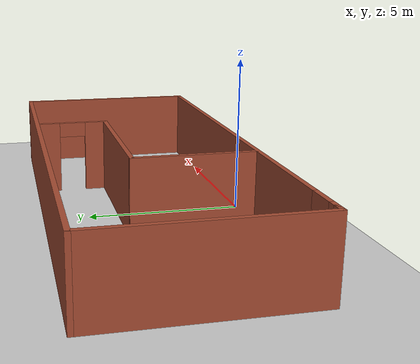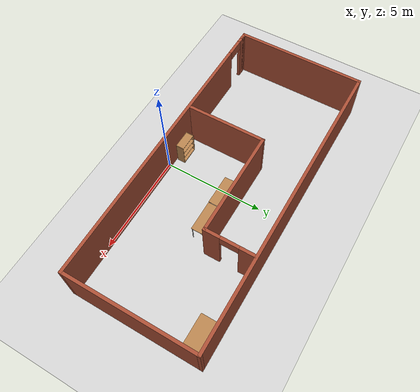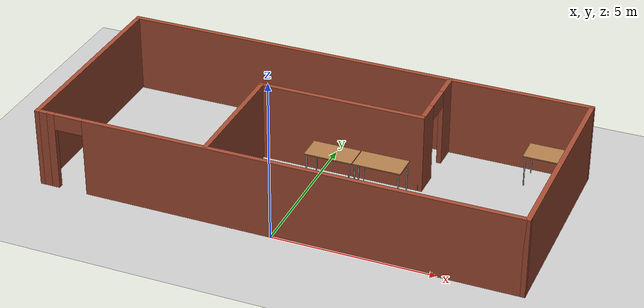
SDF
<sdf version="1.7">
 <world name="default">
  <model name="ground_plane">
   <pose>0 0 0 0 -0 1</pose>
   <static>1</static>
   <link name="link">
    <collision name="collision">
     <geometry><plane><normal>0 0 1</normal><size>100 100</size></plane></geometry>
     <surface>
      <contact><collide_bitmask>65535</collide_bitmask></contact>
      <friction><ode><mu>100</mu><mu2>50</mu2></ode></friction>
     </surface>
    </collision>
    <visual name="visual">
     <cast_shadows>0</cast_shadows>
     <geometry><plane><normal>0 0 1</normal><size>100 100</size></plane></geometry>
     <material>
      <script><uri>file://media/materials/scripts/gazebo.material</uri><name>Gazebo/Grey</name></script>
     </material>
    </visual>
   </link>
  </model>
  <model name="library_v2">
   <pose>0.040322 5.98862 0 0 -0 0</pose>
   <link name="Wall_17">
    <pose>0.125 -5.93351 0 0 -0 0</pose>
    <visual name="Wall_17_Visual_0">
     <pose>-7.17898 0 1.25 0 -0 0</pose>
     <geometry><box><size>0.39205 0.15 2.5</size></box></geometry>
     <material>
      <script><uri>file://media/materials/scripts/gazebo.material</uri><name>Gazebo/Bricks</name></script>
      <ambient>1 1 1 1</ambient>
     </material>
     <meta><layer>0</layer></meta>
    </visual>
    <collision name="Wall_17_Collision_0">
     <geometry><box><size>0.39205 0.15 2.5</size></box></geometry>
     <pose>-7.17898 0 1.25 0 -0 0</pose>
    </collision>
    <visual name="Wall_17_Visual_1">
     <pose>0.646025 0 1.25 0 -0 0</pose>
     <geometry><box><size>13.458 0.15 2.5</size></box></geometry>
     <material>
      <script><uri>file://media/materials/scripts/gazebo.material</uri><name>Gazebo/Bricks</name></script>
      <ambient>1 1 1 1</ambient>
     </material>
     <meta><layer>0</layer></meta>
    </visual>
    <collision name="Wall_17_Collision_1">
     <geometry><box><size>13.458 0.15 2.5</size></box></geometry>
     <pose>0.646025 0 1.25 0 -0 0</pose>
    </collision>
    <visual name="Wall_17_Visual_2">
     <pose>-6.53295 0 2.25 0 -0 0</pose>
     <geometry><box><size>0.9 0.15 0.5</size></box></geometry>
     <material>
      <script><uri>file://media/materials/scripts/gazebo.material</uri><name>Gazebo/Bricks</name></script>
      <ambient>1 1 1 1</ambient>
     </material>
     <meta><layer>0</layer></meta>
    </visual>
    <collision name="Wall_17_Collision_2">
     <geometry><box><size>0.9 0.15 0.5</size></box></geometry>
     <pose>-6.53295 0 2.25 0 -0 0</pose>
    </collision>
   </link>
   <link name="Wall_18">
    <collision name="Wall_18_Collision">
     <geometry><box><size>6.5 0.15 2.5</size></box></geometry>
     <pose>0 0 1.25 0 -0 0</pose>
    </collision>
    <visual name="Wall_18_Visual">
     <pose>0 0 1.25 0 -0 0</pose>
     <geometry><box><size>6.5 0.15 2.5</size></box></geometry>
     <material>
      <script><uri>file://media/materials/scripts/gazebo.material</uri><name>Gazebo/Bricks</name></script>
      <ambient>1 1 1 1</ambient>
     </material>
     <meta><layer>0</layer></meta>
    </visual>
    <pose>7.425 -2.75851 0 0 -0 1.5708</pose>
   </link>
   <link name="Wall_19">
    <collision name="Wall_19_Collision">
     <geometry><box><size>15 0.15 2.5</size></box></geometry>
     <pose>0 0 1.25 0 -0 0</pose>
    </collision>
    <visual name="Wall_19_Visual">
     <pose>0 0 1.25 0 -0 0</pose>
     <geometry><box><size>15 0.15 2.5</size></box></geometry>
     <material>
      <script><uri>file://media/materials/scripts/gazebo.material</uri><name>Gazebo/Bricks</name></script>
      <ambient>1 1 1 1</ambient>
     </material>
     <meta><layer>0</layer></meta>
    </visual>
    <pose>-0 0.416488 0 0 -0 3.14159</pose>
   </link>
   <link name="Wall_20">
    <collision name="Wall_20_Collision">
     <geometry><box><size>6.5 0.15 2.5</size></box></geometry>
     <pose>0 0 1.25 0 -0 0</pose>
    </collision>
    <visual name="Wall_20_Visual">
     <pose>0 0 1.25 0 -0 0</pose>
     <geometry><box><size>6.5 0.15 2.5</size></box></geometry>
     <material>
      <script><uri>file://media/materials/scripts/gazebo.material</uri><name>Gazebo/Bricks</name></script>
      <ambient>1 1 1 1</ambient>
     </material>
     <meta><layer>0</layer></meta>
    </visual>
    <pose>-7.425 -2.75851 0 0 -0 -1.5708</pose>
   </link>
   <link name="Wall_21">
    <collision name="Wall_21_Collision">
     <geometry><box><size>0.4 0.15 2.5</size></box></geometry>
     <pose>0 0 1.25 0 -0 0</pose>
    </collision>
    <visual name="Wall_21_Visual">
     <pose>0 0 1.25 0 -0 0</pose>
     <geometry><box><size>0.4 0.15 2.5</size></box></geometry>
     <material>
      <script><uri>file://media/materials/scripts/gazebo.material</uri><name>Gazebo/Bricks</name></script>
      <ambient>1 1 1 1</ambient>
     </material>
     <meta><layer>0</layer></meta>
    </visual>
    <pose>-7.3 -5.93351 0 0 -0 0</pose>
   </link>
   <link name="Wall_23">
    <collision name="Wall_23_Collision">
     <geometry><box><size>4 0.15 2.5</size></box></geometry>
     <pose>0 0 1.25 0 -0 0</pose>
    </collision>
    <visual name="Wall_23_Visual">
     <pose>0 0 1.25 0 -0 0</pose>
     <geometry><box><size>4 0.15 2.5</size></box></geometry>
     <material>
      <script><uri>file://media/materials/scripts/gazebo.material</uri><name>Gazebo/Bricks</name></script>
      <ambient>1 1 1 1</ambient>
     </material>
     <meta><layer>0</layer></meta>
    </visual>
    <pose>-2.0437 -3.94239 0 0 -0 1.5708</pose>
   </link>
   <link name="Wall_24">
    <collision name="Wall_24_Collision">
     <geometry><box><size>5.25 0.15 2.5</size></box></geometry>
     <pose>0 0 1.25 0 -0 0</pose>
    </collision>
    <visual name="Wall_24_Visual">
     <pose>0 0 1.25 0 -0 0</pose>
     <geometry><box><size>5.25 0.15 2.5</size></box></geometry>
     <material>
      <script><uri>file://media/materials/scripts/gazebo.material</uri><name>Gazebo/Bricks</name></script>
      <ambient>1 1 1 1</ambient>
     </material>
     <meta><layer>0</layer></meta>
    </visual>
    <pose>0.5063 -2.01739 0 0 -0 0</pose>
   </link>
   <link name="Wall_25">
    <pose>3.0563 -0.842388 0 0 -0 1.5708</pose>
    <visual name="Wall_25_Visual_0">
     <pose>-0.843137 0 1.25 0 -0 0</pose>
     <geometry><box><size>0.813725 0.15 2.5</size></box></geometry>
     <material>
      <script><uri>file://media/materials/scripts/gazebo.material</uri><name>Gazebo/Bricks</name></script>
      <ambient>1 1 1 1</ambient>
     </material>
     <meta><layer>0</layer></meta>
    </visual>
    <collision name="Wall_25_Collision_0">
     <geometry><box><size>0.813725 0.15 2.5</size></box></geometry>
     <pose>-0.843137 0 1.25 0 -0 0</pose>
    </collision>
    <visual name="Wall_25_Visual_1">
     <pose>0.856863 0 1.25 0 -0 0</pose>
     <geometry><box><size>0.786275 0.15 2.5</size></box></geometry>
     <material>
      <script><uri>file://media/materials/scripts/gazebo.material</uri><name>Gazebo/Bricks</name></script>
      <ambient>1 1 1 1</ambient>
     </material>
     <meta><layer>0</layer></meta>
    </visual>
    <collision name="Wall_25_Collision_1">
     <geometry><box><size>0.786275 0.15 2.5</size></box></geometry>
     <pose>0.856863 0 1.25 0 -0 0</pose>
    </collision>
    <visual name="Wall_25_Visual_2">
     <pose>0.013725 0 2.25 0 -0 0</pose>
     <geometry><box><size>0.9 0.15 0.5</size></box></geometry>
     <material>
      <script><uri>file://media/materials/scripts/gazebo.material</uri><name>Gazebo/Bricks</name></script>
      <ambient>1 1 1 1</ambient>
     </material>
     <meta><layer>0</layer></meta>
    </visual>
    <collision name="Wall_25_Collision_2">
     <geometry><box><size>0.9 0.15 0.5</size></box></geometry>
     <pose>0.013725 0 2.25 0 -0 0</pose>
    </collision>
   </link>
   <static>1</static>
  </model>
  <model name="table">
   <static>1</static>
   <link name="link">
    <collision name="surface">
     <pose>0 0 1 0 -0 0</pose>
     <geometry><box><size>1.5 0.8 0.03</size></box></geometry>
     <surface><friction><ode><mu>0.6</mu><mu2>0.6</mu2></ode></friction></surface>
    </collision>
    <visual name="visual1">
     <pose>0 0 1 0 -0 0</pose>
     <geometry><box><size>1.5 0.8 0.03</size></box></geometry>
     <material>
      <script><uri>file://media/materials/scripts/gazebo.material</uri><name>Gazebo/Wood</name></script>
     </material>
    </visual>
    <collision name="front_left_leg">
     <pose>0.68 0.38 0.5 0 -0 0</pose>
     <geometry><cylinder><radius>0.02</radius><length>1</length></cylinder></geometry>
    </collision>
    <visual name="front_left_leg">
     <pose>0.68 0.38 0.5 0 -0 0</pose>
     <geometry><cylinder><radius>0.02</radius><length>1</length></cylinder></geometry>
     <material>
      <script><uri>file://media/materials/scripts/gazebo.material</uri><name>Gazebo/Grey</name></script>
     </material>
    </visual>
    <collision name="front_right_leg">
     <pose>0.68 -0.38 0.5 0 -0 0</pose>
     <geometry><cylinder><radius>0.02</radius><length>1</length></cylinder></geometry>
    </collision>
    <visual name="front_right_leg">
     <pose>0.68 -0.38 0.5 0 -0 0</pose>
     <geometry><cylinder><radius>0.02</radius><length>1</length></cylinder></geometry>
     <material>
      <script><uri>file://media/materials/scripts/gazebo.material</uri><name>Gazebo/Grey</name></script>
     </material>
    </visual>
    <collision name="back_right_leg">
     <pose>-0.68 -0.38 0.5 0 -0 0</pose>
     <geometry><cylinder><radius>0.02</radius><length>1</length></cylinder></geometry>
    </collision>
    <visual name="back_right_leg">
     <pose>-0.68 -0.38 0.5 0 -0 0</pose>
     <geometry><cylinder><radius>0.02</radius><length>1</length></cylinder></geometry>
     <material>
      <script><uri>file://media/materials/scripts/gazebo.material</uri><name>Gazebo/Grey</name></script>
     </material>
    </visual>
    <collision name="back_left_leg">
     <pose>-0.68 0.38 0.5 0 -0 0</pose>
     <geometry><cylinder><radius>0.02</radius><length>1</length></cylinder></geometry>
    </collision>
    <visual name="back_left_leg">
     <pose>-0.68 0.38 0.5 0 -0 0</pose>
     <geometry><cylinder><radius>0.02</radius><length>1</length></cylinder></geometry>
     <material>
      <script><uri>file://media/materials/scripts/gazebo.material</uri><name>Gazebo/Grey</name></script>
     </material>
    </visual>
   </link>
   <pose>6.51806 5.77574 0 0 -0 0</pose>
  </model>
  <model name="bookshelf_0">
   <static>1</static>
   <link name="link">
    <inertial><mass>1</mass></inertial>
    <collision name="back">
     <pose>0 0.005 0.6 0 -0 0</pose>
     <geometry><box><size>0.9 0.01 1.2</size></box></geometry>
    </collision>
    <visual name="visual1">
     <pose>0 0.005 0.6 0 -0 0</pose>
     <geometry><box><size>0.9 0.01 1.2</size></box></geometry>
     <material>
      <script><uri>file://media/materials/scripts/gazebo.material</uri><name>Gazebo/Wood</name></script>
     </material>
    </visual>
    <collision name="left_side">
     <pose>0.45 -0.195 0.6 0 -0 0</pose>
     <geometry><box><size>0.02 0.4 1.2</size></box></geometry>
    </collision>
    <visual name="visual2">
     <pose>0.45 -0.195 0.6 0 -0 0</pose>
     <geometry><box><size>0.02 0.4 1.2</size></box></geometry>
     <material>
      <script><uri>file://media/materials/scripts/gazebo.material</uri><name>Gazebo/Wood</name></script>
     </material>
    </visual>
    <collision name="right_side">
     <pose>-0.45 -0.195 0.6 0 -0 0</pose>
     <geometry><box><size>0.02 0.4 1.2</size></box></geometry>
    </collision>
    <visual name="visual3">
     <pose>-0.45 -0.195 0.6 0 -0 0</pose>
     <geometry><box><size>0.02 0.4 1.2</size></box></geometry>
     <material>
      <script><uri>file://media/materials/scripts/gazebo.material</uri><name>Gazebo/Wood</name></script>
     </material>
    </visual>
    <collision name="bottom">
     <pose>0 -0.195 0.03 0 -0 0</pose>
     <geometry><box><size>0.88 0.4 0.06</size></box></geometry>
    </collision>
    <visual name="visual4">
     <pose>0 -0.195 0.03 0 -0 0</pose>
     <geometry><box><size>0.88 0.4 0.06</size></box></geometry>
     <material>
      <script><uri>file://media/materials/scripts/gazebo.material</uri><name>Gazebo/Wood</name></script>
     </material>
    </visual>
    <collision name="top">
     <pose>0 -0.195 1.19 0 -0 0</pose>
     <geometry><box><size>0.88 0.4 0.02</size></box></geometry>
    </collision>
    <visual name="visual5">
     <pose>0 -0.195 1.19 0 -0 0</pose>
     <geometry><box><size>0.88 0.4 0.02</size></box></geometry>
     <material>
      <script><uri>file://media/materials/scripts/gazebo.material</uri><name>Gazebo/Wood</name></script>
     </material>
    </visual>
    <collision name="low_shelf">
     <pose>0 -0.195 0.43 0 -0 0</pose>
     <geometry><box><size>0.88 0.4 0.02</size></box></geometry>
    </collision>
    <visual name="visual6">
     <pose>0 -0.195 0.43 0 -0 0</pose>
     <geometry><box><size>0.88 0.4 0.02</size></box></geometry>
     <material>
      <script><uri>file://media/materials/scripts/gazebo.material</uri><name>Gazebo/Wood</name></script>
     </material>
    </visual>
    <collision name="high_shelf">
     <pose>0 -0.195 0.8 0 -0 0</pose>
     <geometry><box><size>0.88 0.4 0.02</size></box></geometry>
    </collision>
    <visual name="visual7">
     <pose>0 -0.195 0.8 0 -0 0</pose>
     <geometry><box><size>0.88 0.4 0.02</size></box></geometry>
     <material>
      <script><uri>file://media/materials/scripts/gazebo.material</uri><name>Gazebo/Wood</name></script>
     </material>
    </visual>
   </link>
   <pose>-0.952056 0.193928 0 0 -0 3.13754</pose>
  </model>
  <model name="table_clone_0">
   <static>1</static>
   <link name="link">
    <collision name="surface">
     <pose>0 0 1 0 -0 0</pose>
     <geometry><box><size>1.5 0.8 0.03</size></box></geometry>
     <surface><friction><ode><mu>0.6</mu><mu2>0.6</mu2></ode></friction></surface>
    </collision>
    <visual name="visual1">
     <pose>0 0 1 0 -0 0</pose>
     <geometry><box><size>1.5 0.8 0.03</size></box></geometry>
     <material>
      <script><uri>file://media/materials/scripts/gazebo.material</uri><name>Gazebo/Wood</name></script>
     </material>
    </visual>
    <collision name="front_left_leg">
     <pose>0.68 0.38 0.5 0 -0 0</pose>
     <geometry><cylinder><radius>0.02</radius><length>1</length></cylinder></geometry>
    </collision>
    <visual name="front_left_leg">
     <pose>0.68 0.38 0.5 0 -0 0</pose>
     <geometry><cylinder><radius>0.02</radius><length>1</length></cylinder></geometry>
     <material>
      <script><uri>file://media/materials/scripts/gazebo.material</uri><name>Gazebo/Grey</name></script>
     </material>
    </visual>
    <collision name="front_right_leg">
     <pose>0.68 -0.38 0.5 0 -0 0</pose>
     <geometry><cylinder><radius>0.02</radius><length>1</length></cylinder></geometry>
    </collision>
    <visual name="front_right_leg">
     <pose>0.68 -0.38 0.5 0 -0 0</pose>
     <geometry><cylinder><radius>0.02</radius><length>1</length></cylinder></geometry>
     <material>
      <script><uri>file://media/materials/scripts/gazebo.material</uri><name>Gazebo/Grey</name></script>
     </material>
    </visual>
    <collision name="back_right_leg">
     <pose>-0.68 -0.38 0.5 0 -0 0</pose>
     <geometry><cylinder><radius>0.02</radius><length>1</length></cylinder></geometry>
    </collision>
    <visual name="back_right_leg">
     <pose>-0.68 -0.38 0.5 0 -0 0</pose>
     <geometry><cylinder><radius>0.02</radius><length>1</length></cylinder></geometry>
     <material>
      <script><uri>file://media/materials/scripts/gazebo.material</uri><name>Gazebo/Grey</name></script>
     </material>
    </visual>
    <collision name="back_left_leg">
     <pose>-0.68 0.38 0.5 0 -0 0</pose>
     <geometry><cylinder><radius>0.02</radius><length>1</length></cylinder></geometry>
    </collision>
    <visual name="back_left_leg">
     <pose>-0.68 0.38 0.5 0 -0 0</pose>
     <geometry><cylinder><radius>0.02</radius><length>1</length></cylinder></geometry>
     <material>
      <script><uri>file://media/materials/scripts/gazebo.material</uri><name>Gazebo/Grey</name></script>
     </material>
    </visual>
   </link>
   <pose>0.51057 3.42769 0 0 -0 0</pose>
  </model>
  <model name="table_clone_1">
   <static>1</static>
   <link name="link">
    <collision name="surface">
     <pose>0 0 1 0 -0 0</pose>
     <geometry><box><size>1.5 0.8 0.03</size></box></geometry>
     <surface><friction><ode><mu>0.6</mu><mu2>0.6</mu2></ode></friction></surface>
    </collision>
    <visual name="visual1">
     <pose>0 0 1 0 -0 0</pose>
     <geometry><box><size>1.5 0.8 0.03</size></box></geometry>
     <material>
      <script><uri>file://media/materials/scripts/gazebo.material</uri><name>Gazebo/Wood</name></script>
     </material>
    </visual>
    <collision name="front_left_leg">
     <pose>0.68 0.38 0.5 0 -0 0</pose>
     <geometry><cylinder><radius>0.02</radius><length>1</length></cylinder></geometry>
    </collision>
    <visual name="front_left_leg">
     <pose>0.68 0.38 0.5 0 -0 0</pose>
     <geometry><cylinder><radius>0.02</radius><length>1</length></cylinder></geometry>
     <material>
      <script><uri>file://media/materials/scripts/gazebo.material</uri><name>Gazebo/Grey</name></script>
     </material>
    </visual>
    <collision name="front_right_leg">
     <pose>0.68 -0.38 0.5 0 -0 0</pose>
     <geometry><cylinder><radius>0.02</radius><length>1</length></cylinder></geometry>
    </collision>
    <visual name="front_right_leg">
     <pose>0.68 -0.38 0.5 0 -0 0</pose>
     <geometry><cylinder><radius>0.02</radius><length>1</length></cylinder></geometry>
     <material>
      <script><uri>file://media/materials/scripts/gazebo.material</uri><name>Gazebo/Grey</name></script>
     </material>
    </visual>
    <collision name="back_right_leg">
     <pose>-0.68 -0.38 0.5 0 -0 0</pose>
     <geometry><cylinder><radius>0.02</radius><length>1</length></cylinder></geometry>
    </collision>
    <visual name="back_right_leg">
     <pose>-0.68 -0.38 0.5 0 -0 0</pose>
     <geometry><cylinder><radius>0.02</radius><length>1</length></cylinder></geometry>
     <material>
      <script><uri>file://media/materials/scripts/gazebo.material</uri><name>Gazebo/Grey</name></script>
     </material>
    </visual>
    <collision name="back_left_leg">
     <pose>-0.68 0.38 0.5 0 -0 0</pose>
     <geometry><cylinder><radius>0.02</radius><length>1</length></cylinder></geometry>
    </collision>
    <visual name="back_left_leg">
     <pose>-0.68 0.38 0.5 0 -0 0</pose>
     <geometry><cylinder><radius>0.02</radius><length>1</length></cylinder></geometry>
     <material>
      <script><uri>file://media/materials/scripts/gazebo.material</uri><name>Gazebo/Grey</name></script>
     </material>
    </visual>
   </link>
   <pose>2.03619 3.44023 0 0 -0 0</pose>
  </model>
 </world>
</sdf>
